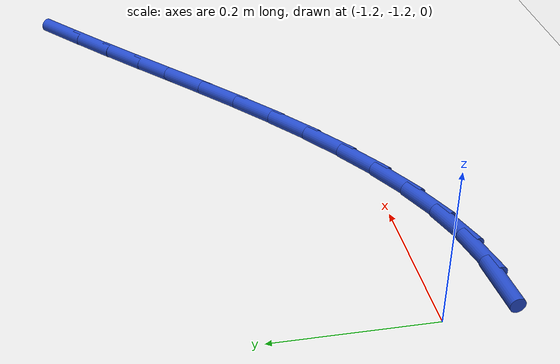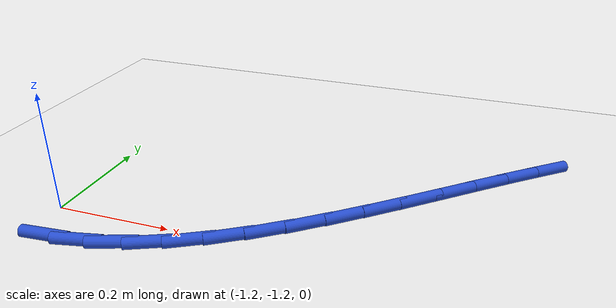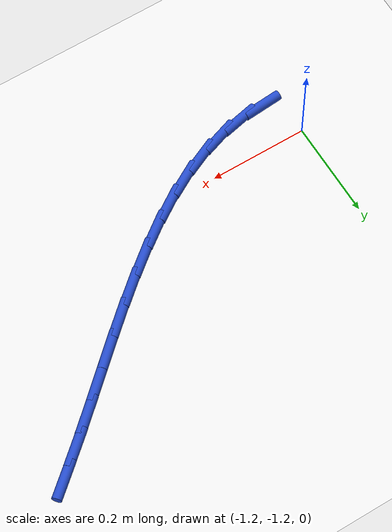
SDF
<sdf version="1.6">
 <world name="default">
  <model name="ground_plane">
   <static>1</static>
   <link name="link">
    <collision name="collision">
     <geometry><plane><normal>0 0 1</normal><size>100 100</size></plane></geometry>
     <surface><friction><ode><mu>100</mu><mu2>50</mu2></ode></friction></surface>
    </collision>
    <visual name="visual">
     <cast_shadows>0</cast_shadows>
     <geometry><plane><normal>0 0 1</normal><size>100 100</size></plane></geometry>
     <material>
      <script><uri>file://media/materials/scripts/gazebo.material</uri><name>Gazebo/WhiteGlow</name></script>
     </material>
    </visual>
   </link>
  </model>
  <model name="line">
   <link name="link_90">
    <pose>-1.1607413971858802 -1.283660811575523 0.01 0 1.57 0.07872953781354532</pose>
    <collision name="collision">
     <geometry><cylinder><radius>0.01</radius><length>0.08</length></cylinder></geometry>
    </collision>
    <visual name="visual">
     <material>
      <script><name>Gazebo/Blue</name><uri>file://media/materials/scripts/gazebo.material</uri></script>
     </material>
     <geometry><cylinder><radius>0.01</radius><length>0.08</length></cylinder></geometry>
    </visual>
   </link>
   <link name="link_91">
    <pose>-1.1062339125101928 -1.279360574047796 0.01 0 1.57 0.2153217262400553</pose>
    <collision name="collision">
     <geometry><cylinder><radius>0.01</radius><length>0.08</length></cylinder></geometry>
    </collision>
    <visual name="visual">
     <material>
      <script><name>Gazebo/Blue</name><uri>file://media/materials/scripts/gazebo.material</uri></script>
     </material>
     <geometry><cylinder><radius>0.01</radius><length>0.08</length></cylinder></geometry>
    </visual>
   </link>
   <link name="link_92">
    <pose>-1.0524992627984897 -1.2676081449266525 0.01 0 1.57 0.3349559137842699</pose>
    <collision name="collision">
     <geometry><cylinder><radius>0.01</radius><length>0.08</length></cylinder></geometry>
    </collision>
    <visual name="visual">
     <material>
      <script><name>Gazebo/Blue</name><uri>file://media/materials/scripts/gazebo.material</uri></script>
     </material>
     <geometry><cylinder><radius>0.01</radius><length>0.08</length></cylinder></geometry>
    </visual>
   </link>
   <link name="link_93">
    <pose>-0.9994856130464637 -1.2491555944410333 0.01 0 1.57 0.436043839838797</pose>
    <collision name="collision">
     <geometry><cylinder><radius>0.01</radius><length>0.08</length></cylinder></geometry>
    </collision>
    <visual name="visual">
     <material>
      <script><name>Gazebo/Blue</name><uri>file://media/materials/scripts/gazebo.material</uri></script>
     </material>
     <geometry><cylinder><radius>0.01</radius><length>0.08</length></cylinder></geometry>
    </visual>
   </link>
   <link name="link_94">
    <pose>-0.9471405389119448 -1.2247650666014351 0.01 0 1.57 0.5192477797495542</pose>
    <collision name="collision">
     <geometry><cylinder><radius>0.01</radius><length>0.08</length></cylinder></geometry>
    </collision>
    <visual name="visual">
     <material>
      <script><name>Gazebo/Blue</name><uri>file://media/materials/scripts/gazebo.material</uri></script>
     </material>
     <geometry><cylinder><radius>0.01</radius><length>0.08</length></cylinder></geometry>
    </visual>
   </link>
   <link name="link_95">
    <pose>-0.8954116160527626 -1.1951987054183533 0.01 0 1.57 0.5862404456098097</pose>
    <collision name="collision">
     <geometry><cylinder><radius>0.01</radius><length>0.08</length></cylinder></geometry>
    </collision>
    <visual name="visual">
     <material>
      <script><name>Gazebo/Blue</name><uri>file://media/materials/scripts/gazebo.material</uri></script>
     </material>
     <geometry><cylinder><radius>0.01</radius><length>0.08</length></cylinder></geometry>
    </visual>
   </link>
   <link name="link_96">
    <pose>-0.8442464201267458 -1.1612186549022832 0.01 0 1.57 0.6389520133337881</pose>
    <collision name="collision">
     <geometry><cylinder><radius>0.01</radius><length>0.08</length></cylinder></geometry>
    </collision>
    <visual name="visual">
     <material>
      <script><name>Gazebo/Blue</name><uri>file://media/materials/scripts/gazebo.material</uri></script>
     </material>
     <geometry><cylinder><radius>0.01</radius><length>0.08</length></cylinder></geometry>
    </visual>
   </link>
   <link name="link_97">
    <pose>-0.7935925267917252 -1.1235870590637207 0.01 0 1.57 0.679158987227888</pose>
    <collision name="collision">
     <geometry><cylinder><radius>0.01</radius><length>0.08</length></cylinder></geometry>
    </collision>
    <visual name="visual">
     <material>
      <script><name>Gazebo/Blue</name><uri>file://media/materials/scripts/gazebo.material</uri></script>
     </material>
     <geometry><cylinder><radius>0.01</radius><length>0.08</length></cylinder></geometry>
    </visual>
   </link>
   <link name="link_98">
    <pose>-0.7433975117055296 -1.0830660619131622 0.01 0 1.57 0.708305982786368</pose>
    <collision name="collision">
     <geometry><cylinder><radius>0.01</radius><length>0.08</length></cylinder></geometry>
    </collision>
    <visual name="visual">
     <material>
      <script><name>Gazebo/Blue</name><uri>file://media/materials/scripts/gazebo.material</uri></script>
     </material>
     <geometry><cylinder><radius>0.01</radius><length>0.08</length></cylinder></geometry>
    </visual>
   </link>
   <link name="link_99">
    <pose>-0.6936089505259888 -1.0404178074611028 0.01 0 1.57 0.7274504238717735</pose>
    <collision name="collision">
     <geometry><cylinder><radius>0.01</radius><length>0.08</length></cylinder></geometry>
    </collision>
    <visual name="visual">
     <material>
      <script><name>Gazebo/Blue</name><uri>file://media/materials/scripts/gazebo.material</uri></script>
     </material>
     <geometry><cylinder><radius>0.01</radius><length>0.08</length></cylinder></geometry>
    </visual>
   </link>
   <link name="link_100">
    <pose>-0.6441744189109319 -0.9964044397180379 0.01 0 1.57 0.7372580538627161</pose>
    <collision name="collision">
     <geometry><cylinder><radius>0.01</radius><length>0.08</length></cylinder></geometry>
    </collision>
    <visual name="visual">
     <material>
      <script><name>Gazebo/Blue</name><uri>file://media/materials/scripts/gazebo.material</uri></script>
     </material>
     <geometry><cylinder><radius>0.01</radius><length>0.08</length></cylinder></geometry>
    </visual>
   </link>
   <link name="link_101">
    <pose>-0.5950414925181895 -0.9517881026944648 0.01 0 1.57 0.738009839209199</pose>
    <collision name="collision">
     <geometry><cylinder><radius>0.01</radius><length>0.08</length></cylinder></geometry>
    </collision>
    <visual name="visual">
     <material>
      <script><name>Gazebo/Blue</name><uri>file://media/materials/scripts/gazebo.material</uri></script>
     </material>
     <geometry><cylinder><radius>0.01</radius><length>0.08</length></cylinder></geometry>
    </visual>
   </link>
   <link name="link_102">
    <pose>-0.5461577470055906 -0.907330940400878 0.01 0 1.57 0.7296011895282865</pose>
    <collision name="collision">
     <geometry><cylinder><radius>0.01</radius><length>0.08</length></cylinder></geometry>
    </collision>
    <visual name="visual">
     <material>
      <script><name>Gazebo/Blue</name><uri>file://media/materials/scripts/gazebo.material</uri></script>
     </material>
     <geometry><cylinder><radius>0.01</radius><length>0.08</length></cylinder></geometry>
    </visual>
   </link>
   <link name="link_103">
    <pose>-0.49747076905982957 -0.8637950653315737 0.01 0 1.57 0.715521595877491</pose>
    <collision name="collision">
     <geometry><cylinder><radius>0.01</radius><length>0.08</length></cylinder></geometry>
    </collision>
    <visual name="visual">
     <material>
      <script><name>Gazebo/Blue</name><uri>file://media/materials/scripts/gazebo.material</uri></script>
     </material>
     <geometry><cylinder><radius>0.01</radius><length>0.08</length></cylinder></geometry>
    </visual>
   </link>
   <link name="link_104">
    <pose>-0.4490192643478642 -0.8216822074225292 0.01 0 1.57 0.7092527080648938</pose>
    <collision name="collision">
     <geometry><cylinder><radius>0.01</radius><length>0.08</length></cylinder></geometry>
    </collision>
    <visual name="visual">
     <material>
      <script><name>Gazebo/Blue</name><uri>file://media/materials/scripts/gazebo.material</uri></script>
     </material>
     <geometry><cylinder><radius>0.01</radius><length>0.08</length></cylinder></geometry>
    </visual>
   </link>
  </model>
 </world>
</sdf>
